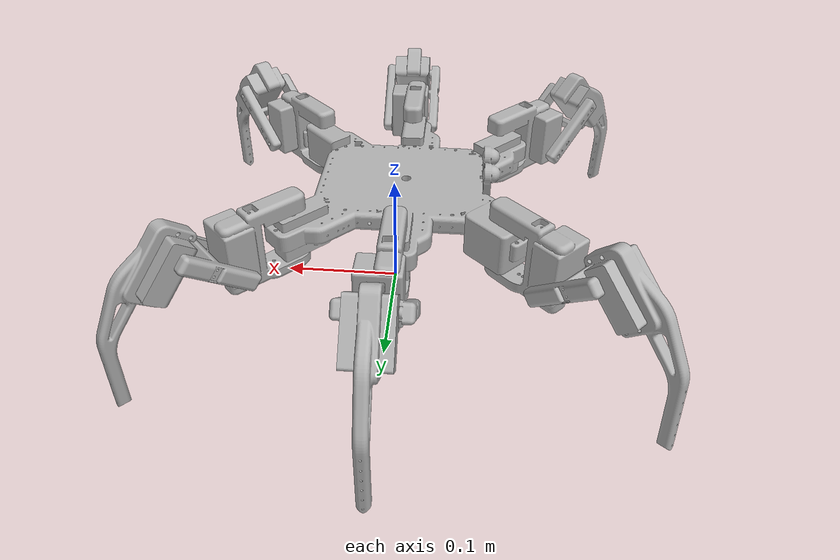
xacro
<?xml version="1.0" ?>
<robot name="hexa" xmlns:xacro="http://www.ros.org/wiki/xacro">

<xacro:include filename="$(find hexa_description)/urdf/materials.xacro" />
<xacro:include filename="$(find hexa_description)/urdf/hexa.trans" />
<xacro:include filename="$(find hexa_description)/urdf/hexa.gazebo" />
<link name="base_link">
  <inertial>
    <origin xyz="-0.013895138809604319 -0.005134492284524289 0.0931876194565496" rpy="0 0 0"/>
    <mass value="3.221718771916926"/>
    <inertia ixx="0.012008" iyy="0.011674" izz="0.023174" ixy="0.000551" iyz="1.2e-05" ixz="6e-05"/>
  </inertial>
  <visual>
    <origin xyz="0 0 0" rpy="0 0 0"/>
    <geometry>
      <mesh filename="file://$(find hexa_description)/meshes/base_link.stl" scale="0.001 0.001 0.001"/>
    </geometry>
    <material name="silver"/>
  </visual>
  <collision>
    <origin xyz="0 0 0" rpy="0 0 0"/>
    <geometry>
      <mesh filename="file://$(find hexa_description)/meshes/base_link.stl" scale="0.001 0.001 0.001"/>
    </geometry>
  </collision>
</link>

<link name="C1_1">
  <inertial>
    <origin xyz="-0.028994766896372245 -0.024311978717197424 0.022672488164500224" rpy="0 0 0"/>
    <mass value="0.5746193089720546"/>
    <inertia ixx="0.000325" iyy="0.000371" izz="0.000253" ixy="-8.1e-05" iyz="-8e-06" ixz="-7e-06"/>
  </inertial>
  <visual>
    <origin xyz="0.09003 0.078199 -0.072414" rpy="0 0 0"/>
    <geometry>
      <mesh filename="file://$(find hexa_description)/meshes/C1_1.stl" scale="0.001 0.001 0.001"/>
    </geometry>
    <material name="silver"/>
  </visual>
  <collision>
    <origin xyz="0.09003 0.078199 -0.072414" rpy="0 0 0"/>
    <geometry>
      <mesh filename="file://$(find hexa_description)/meshes/C1_1.stl" scale="0.001 0.001 0.001"/>
    </geometry>
  </collision>
</link>

<link name="F1_1">
  <inertial>
    <origin xyz="-0.0018722143866507501 -0.02916230701289592 0.018232585657789846" rpy="0 0 0"/>
    <mass value="0.14034936169412515"/>
    <inertia ixx="7.1e-05" iyy="7.1e-05" izz="9.7e-05" ixy="1.8e-05" iyz="1.7e-05" ixz="1.7e-05"/>
  </inertial>
  <visual>
    <origin xyz="0.142638 0.097487 -0.080729" rpy="0 0 0"/>
    <geometry>
      <mesh filename="file://$(find hexa_description)/meshes/F1_1.stl" scale="0.001 0.001 0.001"/>
    </geometry>
    <material name="silver"/>
  </visual>
  <collision>
    <origin xyz="0.142638 0.097487 -0.080729" rpy="0 0 0"/>
    <geometry>
      <mesh filename="file://$(find hexa_description)/meshes/F1_1.stl" scale="0.001 0.001 0.001"/>
    </geometry>
  </collision>
</link>

<link name="T1_1">
  <inertial>
    <origin xyz="-0.027758224223027428 -0.002919792717088976 -0.0158909768117782" rpy="0 0 0"/>
    <mass value="0.45949591144350577"/>
    <inertia ixx="0.000442" iyy="0.000443" izz="0.000227" ixy="-8.2e-05" iyz="-0.000149" ixz="-0.000147"/>
  </inertial>
  <visual>
    <origin xyz="0.148122 0.152822 -0.11682" rpy="0 0 0"/>
    <geometry>
      <mesh filename="file://$(find hexa_description)/meshes/T1_1.stl" scale="0.001 0.001 0.001"/>
    </geometry>
    <material name="silver"/>
  </visual>
  <collision>
    <origin xyz="0.148122 0.152822 -0.11682" rpy="0 0 0"/>
    <geometry>
      <mesh filename="file://$(find hexa_description)/meshes/T1_1.stl" scale="0.001 0.001 0.001"/>
    </geometry>
  </collision>
</link>

<link name="C2_1">
  <inertial>
    <origin xyz="0.003311785979740801 -0.037635042482209 0.022627972145647157" rpy="0 0 0"/>
    <mass value="0.5745120927722643"/>
    <inertia ixx="0.000428" iyy="0.000267" izz="0.000253" ixy="2.3e-05" iyz="-1.1e-05" ixz="-1e-06"/>
  </inertial>
  <visual>
    <origin xyz="0.008074 0.096643 -0.072414" rpy="0 0 0"/>
    <geometry>
      <mesh filename="file://$(find hexa_description)/meshes/C2_1.stl" scale="0.001 0.001 0.001"/>
    </geometry>
    <material name="silver"/>
  </visual>
  <collision>
    <origin xyz="0.008074 0.096643 -0.072414" rpy="0 0 0"/>
    <geometry>
      <mesh filename="file://$(find hexa_description)/meshes/C2_1.stl" scale="0.001 0.001 0.001"/>
    </geometry>
  </collision>
</link>

<link name="F2_1">
  <inertial>
    <origin xyz="0.017362855745432604 -0.02214446026605829 0.018394580195323723" rpy="0 0 0"/>
    <mass value="0.14034940164483126"/>
    <inertia ixx="5.3e-05" iyy="8.9e-05" izz="9.7e-05" ixy="0.0" iyz="2.4e-05" ixz="-0.0"/>
  </inertial>
  <visual>
    <origin xyz="0.019763 0.147281 -0.080567" rpy="0 0 0"/>
    <geometry>
      <mesh filename="file://$(find hexa_description)/meshes/F2_1.stl" scale="0.001 0.001 0.001"/>
    </geometry>
    <material name="silver"/>
  </visual>
  <collision>
    <origin xyz="0.019763 0.147281 -0.080567" rpy="0 0 0"/>
    <geometry>
      <mesh filename="file://$(find hexa_description)/meshes/F2_1.stl" scale="0.001 0.001 0.001"/>
    </geometry>
  </collision>
</link>

<link name="T2_1">
  <inertial>
    <origin xyz="-0.01753163951075761 -0.02216616978134192 -0.016572229356518836" rpy="0 0 0"/>
    <mass value="0.46247525796934125"/>
    <inertia ixx="0.000535" iyy="0.00037" izz="0.000227" ixy="5e-06" iyz="-0.000209" ixz="7e-06"/>
  </inertial>
  <visual>
    <origin xyz="-0.016897 0.190292 -0.116652" rpy="0 0 0"/>
    <geometry>
      <mesh filename="file://$(find hexa_description)/meshes/T2_1.stl" scale="0.001 0.001 0.001"/>
    </geometry>
    <material name="silver"/>
  </visual>
  <collision>
    <origin xyz="-0.016897 0.190292 -0.116652" rpy="0 0 0"/>
    <geometry>
      <mesh filename="file://$(find hexa_description)/meshes/T2_1.stl" scale="0.001 0.001 0.001"/>
    </geometry>
  </collision>
</link>

<link name="C3_1">
  <inertial>
    <origin xyz="0.028953836931924118 -0.024270542868147005 0.022627878260106843" rpy="0 0 0"/>
    <mass value="0.5745134726923262"/>
    <inertia ixx="0.000324" iyy="0.000371" izz="0.000253" ixy="8.1e-05" iyz="-8e-06" ixz="7e-06"/>
  </inertial>
  <visual>
    <origin xyz="-0.074881 0.078199 -0.072414" rpy="0 0 0"/>
    <geometry>
      <mesh filename="file://$(find hexa_description)/meshes/C3_1.stl" scale="0.001 0.001 0.001"/>
    </geometry>
    <material name="silver"/>
  </visual>
  <collision>
    <origin xyz="-0.074881 0.078199 -0.072414" rpy="0 0 0"/>
    <geometry>
      <mesh filename="file://$(find hexa_description)/meshes/C3_1.stl" scale="0.001 0.001 0.001"/>
    </geometry>
  </collision>
</link>

<link name="F3_1">
  <inertial>
    <origin xyz="0.02693905315216756 -0.004378313722505148 0.018394580062922355" rpy="0 0 0"/>
    <mass value="0.14034940224406703"/>
    <inertia ixx="7.1e-05" iyy="7.1e-05" izz="9.7e-05" ixy="-1.8e-05" iyz="1.7e-05" ixz="-1.7e-05"/>
  </inertial>
  <visual>
    <origin xyz="-0.102422 0.122271 -0.080567" rpy="0 0 0"/>
    <geometry>
      <mesh filename="file://$(find hexa_description)/meshes/F3_1.stl" scale="0.001 0.001 0.001"/>
    </geometry>
    <material name="silver"/>
  </visual>
  <collision>
    <origin xyz="-0.102422 0.122271 -0.080567" rpy="0 0 0"/>
    <geometry>
      <mesh filename="file://$(find hexa_description)/meshes/F3_1.stl" scale="0.001 0.001 0.001"/>
    </geometry>
  </collision>
</link>

<link name="T3_1">
  <inertial>
    <origin xyz="0.027343956215421267 -0.002914902996395158 -0.016437964816464604" rpy="0 0 0"/>
    <mass value="0.46473583729206286"/>
    <inertia ixx="0.00045" iyy="0.000451" izz="0.000219" ixy="7.8e-05" iyz="-0.000144" ixz="0.000148"/>
  </inertial>
  <visual>
    <origin xyz="-0.132973 0.152822 -0.11682" rpy="0 0 0"/>
    <geometry>
      <mesh filename="file://$(find hexa_description)/meshes/T3_1.stl" scale="0.001 0.001 0.001"/>
    </geometry>
    <material name="silver"/>
  </visual>
  <collision>
    <origin xyz="-0.132973 0.152822 -0.11682" rpy="0 0 0"/>
    <geometry>
      <mesh filename="file://$(find hexa_description)/meshes/T3_1.stl" scale="0.001 0.001 0.001"/>
    </geometry>
  </collision>
</link>

<link name="C4_1">
  <inertial>
    <origin xyz="0.028953869420130257 0.024270152220533067 0.022627956279600486" rpy="0 0 0"/>
    <mass value="0.5745140625367948"/>
    <inertia ixx="0.000324" iyy="0.000371" izz="0.000253" ixy="-8.1e-05" iyz="8e-06" ixz="7e-06"/>
  </inertial>
  <visual>
    <origin xyz="-0.074881 -0.063915 -0.072414" rpy="0 0 0"/>
    <geometry>
      <mesh filename="file://$(find hexa_description)/meshes/C4_1.stl" scale="0.001 0.001 0.001"/>
    </geometry>
    <material name="silver"/>
  </visual>
  <collision>
    <origin xyz="-0.074881 -0.063915 -0.072414" rpy="0 0 0"/>
    <geometry>
      <mesh filename="file://$(find hexa_description)/meshes/C4_1.stl" scale="0.001 0.001 0.001"/>
    </geometry>
  </collision>
</link>

<link name="F4_1">
  <inertial>
    <origin xyz="0.026939056294819533 0.0043779221139789715 0.018394585657789703" rpy="0 0 0"/>
    <mass value="0.14034936169413065"/>
    <inertia ixx="7.1e-05" iyy="7.1e-05" izz="9.7e-05" ixy="1.8e-05" iyz="-1.7e-05" ixz="-1.7e-05"/>
  </inertial>
  <visual>
    <origin xyz="-0.102422 -0.107987 -0.080567" rpy="0 0 0"/>
    <geometry>
      <mesh filename="file://$(find hexa_description)/meshes/F4_1.stl" scale="0.001 0.001 0.001"/>
    </geometry>
    <material name="silver"/>
  </visual>
  <collision>
    <origin xyz="-0.102422 -0.107987 -0.080567" rpy="0 0 0"/>
    <geometry>
      <mesh filename="file://$(find hexa_description)/meshes/F4_1.stl" scale="0.001 0.001 0.001"/>
    </geometry>
  </collision>
</link>

<link name="T4_1">
  <inertial>
    <origin xyz="0.0031206443733692024 0.02714335773436112 -0.016443493619278354" rpy="0 0 0"/>
    <mass value="0.46453619748667135"/>
    <inertia ixx="0.000444" iyy="0.000457" izz="0.000219" ixy="-7.8e-05" iyz="0.000142" ixz="0.00015"/>
  </inertial>
  <visual>
    <origin xyz="-0.157761 -0.113475 -0.116652" rpy="0 0 0"/>
    <geometry>
      <mesh filename="file://$(find hexa_description)/meshes/T4_1.stl" scale="0.001 0.001 0.001"/>
    </geometry>
    <material name="silver"/>
  </visual>
  <collision>
    <origin xyz="-0.157761 -0.113475 -0.116652" rpy="0 0 0"/>
    <geometry>
      <mesh filename="file://$(find hexa_description)/meshes/T4_1.stl" scale="0.001 0.001 0.001"/>
    </geometry>
  </collision>
</link>

<link name="C5_1">
  <inertial>
    <origin xyz="0.0033100115767160524 0.03774785636101073 0.022682010613042328" rpy="0 0 0"/>
    <mass value="0.5748350168406908"/>
    <inertia ixx="0.00043" iyy="0.000267" izz="0.000254" ixy="-2.3e-05" iyz="1e-05" ixz="-1e-06"/>
  </inertial>
  <visual>
    <origin xyz="0.008074 -0.082358 -0.072414" rpy="0 0 0"/>
    <geometry>
      <mesh filename="file://$(find hexa_description)/meshes/C5_1.stl" scale="0.001 0.001 0.001"/>
    </geometry>
    <material name="silver"/>
  </visual>
  <collision>
    <origin xyz="0.008074 -0.082358 -0.072414" rpy="0 0 0"/>
    <geometry>
      <mesh filename="file://$(find hexa_description)/meshes/C5_1.stl" scale="0.001 0.001 0.001"/>
    </geometry>
  </collision>
</link>

<link name="5F_1">
  <inertial>
    <origin xyz="0.015952862928661455 0.022144530216473196 0.018394836463522468" rpy="0 0 0"/>
    <mass value="0.1403493610653276"/>
    <inertia ixx="5.3e-05" iyy="8.9e-05" izz="9.7e-05" ixy="-0.0" iyz="-2.4e-05" ixz="-0.0"/>
  </inertial>
  <visual>
    <origin xyz="0.019763 -0.133196 -0.080729" rpy="0 0 0"/>
    <geometry>
      <mesh filename="file://$(find hexa_description)/meshes/5F_1.stl" scale="0.001 0.001 0.001"/>
    </geometry>
    <material name="silver"/>
  </visual>
  <collision>
    <origin xyz="0.019763 -0.133196 -0.080729" rpy="0 0 0"/>
    <geometry>
      <mesh filename="file://$(find hexa_description)/meshes/5F_1.stl" scale="0.001 0.001 0.001"/>
    </geometry>
  </collision>
</link>

<link name="T5_1">
  <inertial>
    <origin xyz="-0.017737964042698867 0.021363495648091174 -0.016448359782531452" rpy="0 0 0"/>
    <mass value="0.4642339796519786"/>
    <inertia ixx="0.000529" iyy="0.000372" izz="0.000219" ixy="-1e-06" iyz="0.000206" ixz="1e-06"/>
  </inertial>
  <visual>
    <origin xyz="-0.015487 -0.176207 -0.116814" rpy="0 0 0"/>
    <geometry>
      <mesh filename="file://$(find hexa_description)/meshes/T5_1.stl" scale="0.001 0.001 0.001"/>
    </geometry>
    <material name="silver"/>
  </visual>
  <collision>
    <origin xyz="-0.015487 -0.176207 -0.116814" rpy="0 0 0"/>
    <geometry>
      <mesh filename="file://$(find hexa_description)/meshes/T5_1.stl" scale="0.001 0.001 0.001"/>
    </geometry>
  </collision>
</link>

<link name="C6_1">
  <inertial>
    <origin xyz="-0.028953993008265178 0.024270155035728935 0.022627875546929854" rpy="0 0 0"/>
    <mass value="0.5745134581634299"/>
    <inertia ixx="0.000324" iyy="0.000371" izz="0.000253" ixy="8.1e-05" iyz="8e-06" ixz="-7e-06"/>
  </inertial>
  <visual>
    <origin xyz="0.09003 -0.063915 -0.072414" rpy="0 0 0"/>
    <geometry>
      <mesh filename="file://$(find hexa_description)/meshes/C6_1.stl" scale="0.001 0.001 0.001"/>
    </geometry>
    <material name="silver"/>
  </visual>
  <collision>
    <origin xyz="0.09003 -0.063915 -0.072414" rpy="0 0 0"/>
    <geometry>
      <mesh filename="file://$(find hexa_description)/meshes/C6_1.stl" scale="0.001 0.001 0.001"/>
    </geometry>
  </collision>
</link>

<link name="F6_1">
  <inertial>
    <origin xyz="-0.02693921124399938 0.00437792882358333 0.018394580062923147" rpy="0 0 0"/>
    <mass value="0.14034940224406275"/>
    <inertia ixx="7.1e-05" iyy="7.1e-05" izz="9.7e-05" ixy="-1.8e-05" iyz="-1.7e-05" ixz="1.7e-05"/>
  </inertial>
  <visual>
    <origin xyz="0.117571 -0.107987 -0.080567" rpy="0 0 0"/>
    <geometry>
      <mesh filename="file://$(find hexa_description)/meshes/F6_1.stl" scale="0.001 0.001 0.001"/>
    </geometry>
    <material name="silver"/>
  </visual>
  <collision>
    <origin xyz="0.117571 -0.107987 -0.080567" rpy="0 0 0"/>
    <geometry>
      <mesh filename="file://$(find hexa_description)/meshes/F6_1.stl" scale="0.001 0.001 0.001"/>
    </geometry>
  </collision>
</link>

<link name="T6_1">
  <inertial>
    <origin xyz="-0.028148093001231778 0.00324826941742562 -0.015066055186993083" rpy="0 0 0"/>
    <mass value="0.4576623920341691"/>
    <inertia ixx="0.000431" iyy="0.000435" izz="0.000242" ixy="9e-05" iyz="0.000152" ixz="-0.000151"/>
  </inertial>
  <visual>
    <origin xyz="0.148122 -0.138538 -0.11682" rpy="0 0 0"/>
    <geometry>
      <mesh filename="file://$(find hexa_description)/meshes/T6_1.stl" scale="0.001 0.001 0.001"/>
    </geometry>
    <material name="silver"/>
  </visual>
  <collision>
    <origin xyz="0.148122 -0.138538 -0.11682" rpy="0 0 0"/>
    <geometry>
      <mesh filename="file://$(find hexa_description)/meshes/T6_1.stl" scale="0.001 0.001 0.001"/>
    </geometry>
  </collision>
</link>

<joint name="Revolute 1" type="revolute">
  <origin xyz="-0.09003 -0.078199 0.072414" rpy="0 0 0"/>
  <parent link="base_link"/>
  <child link="C1_1"/>
  <axis xyz="0.0 0.0 -1.0"/>
  <limit upper="1.134464" lower="-1.134464" effort="10000" velocity="10"/>
  <dynamics damping="0.2" friction="1.0"/>
</joint>

<joint name="Revolute 2" type="revolute">
  <origin xyz="-0.052608 -0.019288 0.008315" rpy="0 0 0"/>
  <parent link="C1_1"/>
  <child link="F1_1"/>
  <axis xyz="-0.707107 0.707107 0.0"/>
  <limit upper="0.174533" lower="-1.047198" effort="10000" velocity="10"/>
  <dynamics damping="0.2" friction="1.0"/>
</joint>

<joint name="Revolute 3" type="revolute">
  <origin xyz="-0.005484 -0.055335 0.036091" rpy="0 0 0"/>
  <parent link="F1_1"/>
  <child link="T1_1"/>
  <axis xyz="-0.707107 0.707107 0.0"/>
  <limit upper="0.785398" lower="-0.785398" effort="10000" velocity="10"/>
  <dynamics damping="0.2" friction="1.0"/>
</joint>

<joint name="Revolute 4" type="revolute">
  <origin xyz="-0.008074 -0.096643 0.072414" rpy="0 0 0"/>
  <parent link="base_link"/>
  <child link="C2_1"/>
  <axis xyz="0.0 0.0 -1.0"/>
  <limit upper="1.134464" lower="-1.134464" effort="10000" velocity="10"/>
  <dynamics damping="0.2" friction="1.0"/>
</joint>

<joint name="Revolute 5" type="revolute">
  <origin xyz="-0.011689 -0.050638 0.008153" rpy="0 0 0"/>
  <parent link="C2_1"/>
  <child link="F2_1"/>
  <axis xyz="-1.0 -0.0 0.0"/>
  <limit upper="0.174533" lower="-1.047198" effort="10000" velocity="10"/>
  <dynamics damping="0.2" friction="1.0"/>
</joint>

<joint name="Revolute 6" type="revolute">
  <origin xyz="0.03666 -0.043011 0.036085" rpy="0 0 0"/>
  <parent link="F2_1"/>
  <child link="T2_1"/>
  <axis xyz="1.0 0.0 -0.0"/>
  <limit upper="0.349066" lower="-0.872665" effort="10000" velocity="10"/>
  <dynamics damping="0.2" friction="1.0"/>
</joint>

<joint name="Revolute 7" type="revolute">
  <origin xyz="0.074881 -0.078199 0.072414" rpy="0 0 0"/>
  <parent link="base_link"/>
  <child link="C3_1"/>
  <axis xyz="0.0 0.0 -1.0"/>
  <limit upper="1.134464" lower="-1.134464" effort="10000" velocity="10"/>
  <dynamics damping="0.2" friction="1.0"/>
</joint>

<joint name="Revolute 8" type="revolute">
  <origin xyz="0.027541 -0.044072 0.008153" rpy="0 0 0"/>
  <parent link="C3_1"/>
  <child link="F3_1"/>
  <axis xyz="-0.707107 -0.707107 0.0"/>
  <limit upper="0.174533" lower="-0.959931" effort="10000" velocity="10"/>
  <dynamics damping="0.2" friction="1.0"/>
</joint>

<joint name="Revolute 9" type="revolute">
  <origin xyz="0.030551 -0.030551 0.036253" rpy="0 0 0"/>
  <parent link="F3_1"/>
  <child link="T3_1"/>
  <axis xyz="-0.707107 -0.707107 -0.0"/>
  <limit upper="1.48353" lower="-0.436332" effort="10000" velocity="10"/>
  <dynamics damping="0.2" friction="1.0"/>
</joint>

<joint name="Revolute 10" type="revolute">
  <origin xyz="0.074881 0.063915 0.072414" rpy="0 0 0"/>
  <parent link="base_link"/>
  <child link="C4_1"/>
  <axis xyz="0.0 0.0 -1.0"/>
  <limit upper="1.134464" lower="-1.134464" effort="10000" velocity="10"/>
  <dynamics damping="0.2" friction="1.0"/>
</joint>

<joint name="Revolute 11" type="revolute">
  <origin xyz="0.027541 0.044072 0.008153" rpy="0 0 0"/>
  <parent link="C4_1"/>
  <child link="F4_1"/>
  <axis xyz="-0.707107 0.707107 0.0"/>
  <limit upper="1.134464" lower="-0.174533" effort="10000" velocity="10"/>
  <dynamics damping="0.2" friction="1.0"/>
</joint>

<joint name="Revolute 12" type="revolute">
  <origin xyz="0.055339 0.005488 0.036085" rpy="0 0 0"/>
  <parent link="F4_1"/>
  <child link="T4_1"/>
  <axis xyz="0.707107 -0.707107 -0.0"/>
  <limit upper="0.610865" lower="-0.349066" effort="10000" velocity="10"/>
  <dynamics damping="0.2" friction="1.0"/>
</joint>

<joint name="Revolute 13" type="revolute">
  <origin xyz="-0.008074 0.082358 0.072414" rpy="0 0 0"/>
  <parent link="base_link"/>
  <child link="C5_1"/>
  <axis xyz="0.0 0.0 -1.0"/>
  <limit upper="1.134464" lower="-1.134464" effort="10000" velocity="10"/>
  <dynamics damping="0.2" friction="1.0"/>
</joint>

<joint name="Revolute 14" type="revolute">
  <origin xyz="-0.011689 0.050838 0.008315" rpy="0 0 0"/>
  <parent link="C5_1"/>
  <child link="5F_1"/>
  <axis xyz="-1.0 -0.0 0.0"/>
  <limit upper="1.134464" lower="-0.174533" effort="10000" velocity="10"/>
  <dynamics damping="0.2" friction="1.0"/>
</joint>

<joint name="Revolute 15" type="revolute">
  <origin xyz="0.03525 0.043011 0.036085" rpy="0 0 0"/>
  <parent link="5F_1"/>
  <child link="T5_1"/>
  <axis xyz="1.0 0.0 -0.0"/>
  <limit upper="1.134464" lower="-0.523599" effort="10000" velocity="10"/>
  <dynamics damping="0.2" friction="1.0"/>
</joint>

<joint name="Revolute 16" type="revolute">
  <origin xyz="-0.09003 0.063915 0.072414" rpy="0 0 0"/>
  <parent link="base_link"/>
  <child link="C6_1"/>
  <axis xyz="0.0 0.0 -1.0"/>
  <limit upper="1.134464" lower="-1.134464" effort="10000" velocity="10"/>
  <dynamics damping="0.2" friction="1.0"/>
</joint>

<joint name="Revolute 17" type="revolute">
  <origin xyz="-0.027541 0.044072 0.008153" rpy="0 0 0"/>
  <parent link="C6_1"/>
  <child link="F6_1"/>
  <axis xyz="0.707107 0.707107 -0.0"/>
  <limit upper="0.174533" lower="-1.134464" effort="10000" velocity="10"/>
  <dynamics damping="0.2" friction="1.0"/>
</joint>

<joint name="Revolute 18" type="revolute">
  <origin xyz="-0.030551 0.030551 0.036253" rpy="0 0 0"/>
  <parent link="F6_1"/>
  <child link="T6_1"/>
  <axis xyz="0.707107 0.707107 -0.0"/>
  <limit upper="1.047198" lower="-0.785398" effort="10000" velocity="10"/>
  <dynamics damping="0.2" friction="1.0"/>
</joint>

</robot>

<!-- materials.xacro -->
<robot name="hexa" xmlns:xacro="http://www.ros.org/wiki/xacro" >

<material name="silver">
  <color rgba="0.700 0.700 0.700 1.000"/>
</material>

</robot>
